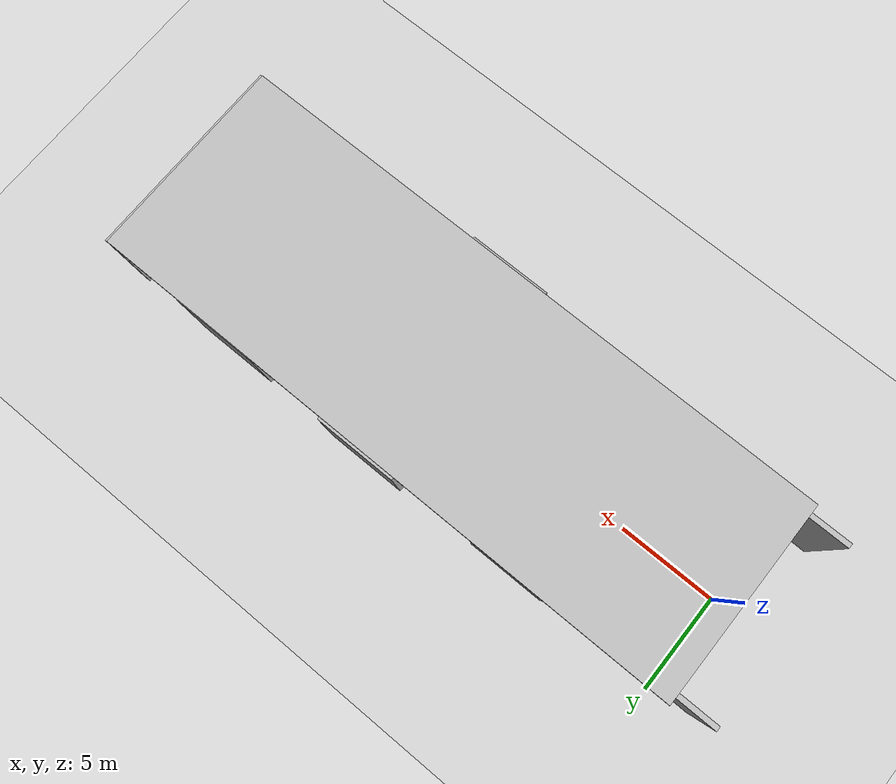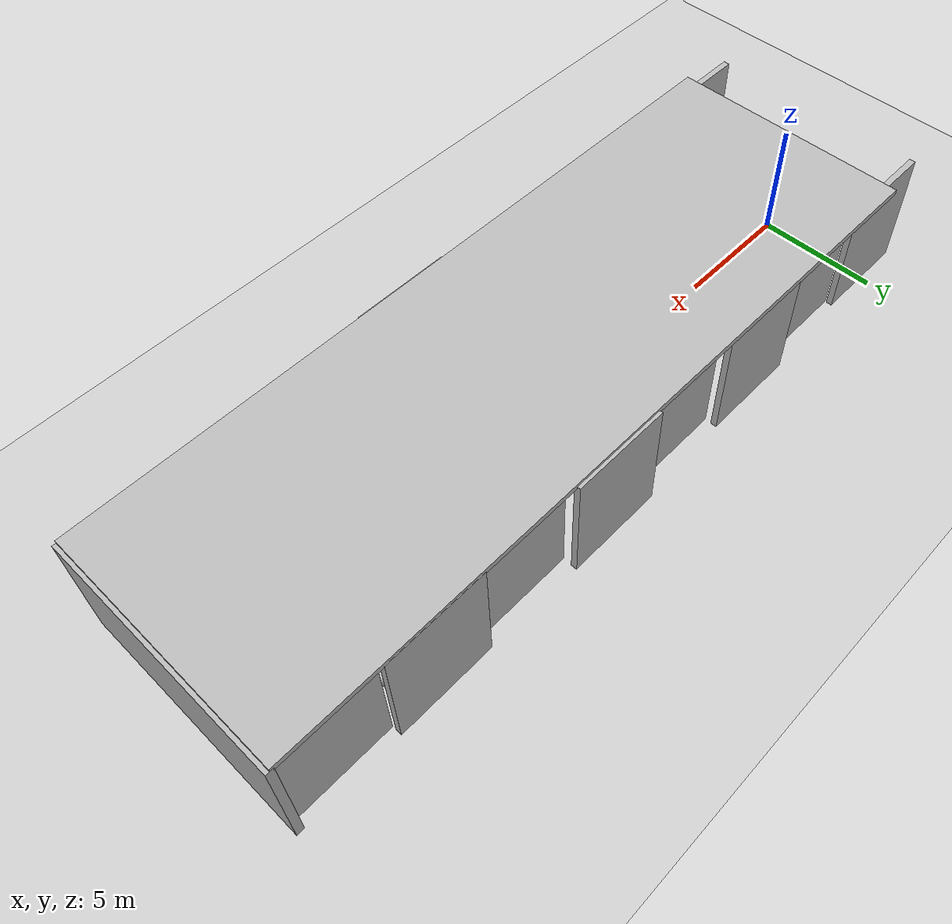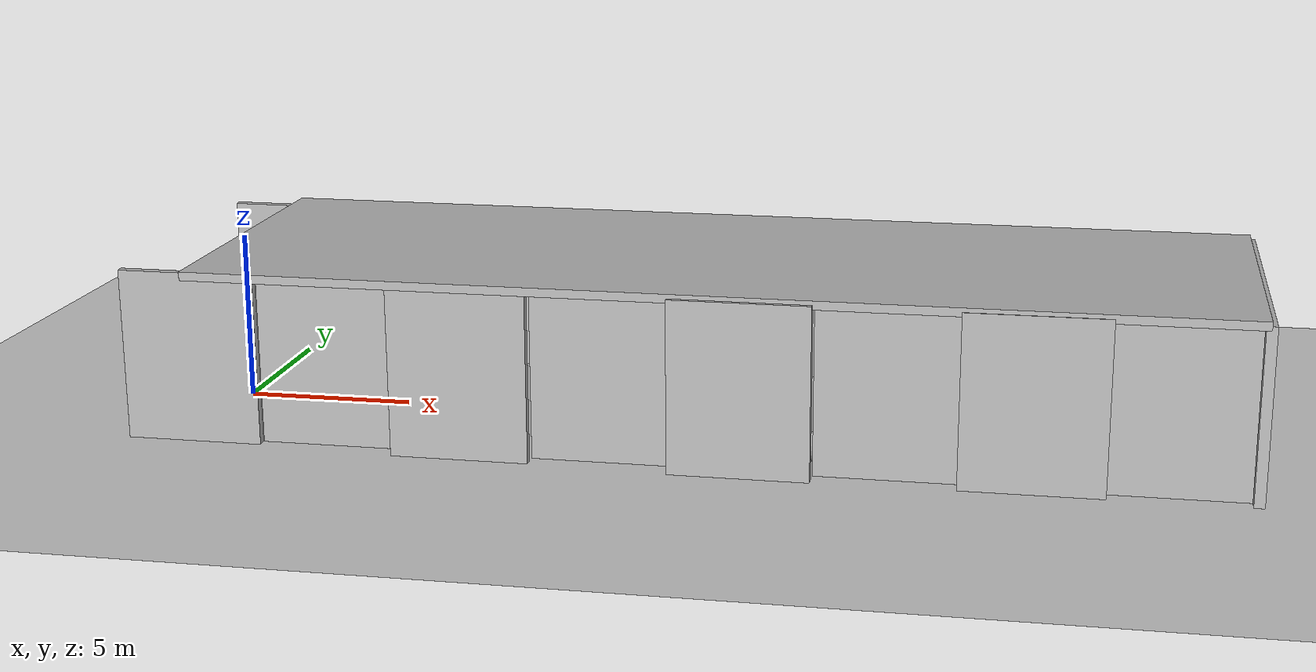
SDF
<?xml version="1.0" ?>
<sdf version="1.6">
  <world name="goaf_complex">
    <include><uri>model://sun</uri></include>
    <include><uri>model://ground_plane</uri></include>

    <model name="left_wall_00"><static>true</static><pose>0.0 4.5 2.5 0 0 0</pose><link name="link"><collision name="collision"><geometry><box><size>4.0 0.25 5.0</size></box></geometry></collision><visual name="visual"><geometry><box><size>4.0 0.25 5.0</size></box></geometry></visual></link></model>
    <model name="left_wall_01"><static>true</static><pose>4.0 4.2 2.5 0 0 0</pose><link name="link"><collision name="collision"><geometry><box><size>4.0 0.25 5.0</size></box></geometry></collision><visual name="visual"><geometry><box><size>4.0 0.25 5.0</size></box></geometry></visual></link></model>
    <model name="left_wall_02"><static>true</static><pose>8.0 4.8 2.5 0 0 0</pose><link name="link"><collision name="collision"><geometry><box><size>4.0 0.25 5.0</size></box></geometry></collision><visual name="visual"><geometry><box><size>4.0 0.25 5.0</size></box></geometry></visual></link></model>
    <model name="left_wall_03"><static>true</static><pose>12.0 4.3 2.5 0 0 0</pose><link name="link"><collision name="collision"><geometry><box><size>4.0 0.25 5.0</size></box></geometry></collision><visual name="visual"><geometry><box><size>4.0 0.25 5.0</size></box></geometry></visual></link></model>
    <model name="left_wall_04"><static>true</static><pose>16.0 5.0 2.5 0 0 0</pose><link name="link"><collision name="collision"><geometry><box><size>4.0 0.25 5.0</size></box></geometry></collision><visual name="visual"><geometry><box><size>4.0 0.25 5.0</size></box></geometry></visual></link></model>
    <model name="left_wall_05"><static>true</static><pose>20.0 4.4 2.5 0 0 0</pose><link name="link"><collision name="collision"><geometry><box><size>4.0 0.25 5.0</size></box></geometry></collision><visual name="visual"><geometry><box><size>4.0 0.25 5.0</size></box></geometry></visual></link></model>
    <model name="left_wall_06"><static>true</static><pose>24.0 4.9 2.5 0 0 0</pose><link name="link"><collision name="collision"><geometry><box><size>4.0 0.25 5.0</size></box></geometry></collision><visual name="visual"><geometry><box><size>4.0 0.25 5.0</size></box></geometry></visual></link></model>
    <model name="left_wall_07"><static>true</static><pose>28.0 4.5 2.5 0 0 0</pose><link name="link"><collision name="collision"><geometry><box><size>4.0 0.25 5.0</size></box></geometry></collision><visual name="visual"><geometry><box><size>4.0 0.25 5.0</size></box></geometry></visual></link></model>

    <model name="right_wall_00"><static>true</static><pose>0.0 -4.5 2.5 0 0 0</pose><link name="link"><collision name="collision"><geometry><box><size>4.0 0.25 5.0</size></box></geometry></collision><visual name="visual"><geometry><box><size>4.0 0.25 5.0</size></box></geometry></visual></link></model>
    <model name="right_wall_01"><static>true</static><pose>4.0 -4.2 2.5 0 0 0</pose><link name="link"><collision name="collision"><geometry><box><size>4.0 0.25 5.0</size></box></geometry></collision><visual name="visual"><geometry><box><size>4.0 0.25 5.0</size></box></geometry></visual></link></model>
    <model name="right_wall_02"><static>true</static><pose>8.0 -4.8 2.5 0 0 0</pose><link name="link"><collision name="collision"><geometry><box><size>4.0 0.25 5.0</size></box></geometry></collision><visual name="visual"><geometry><box><size>4.0 0.25 5.0</size></box></geometry></visual></link></model>
    <model name="right_wall_03"><static>true</static><pose>12.0 -4.3 2.5 0 0 0</pose><link name="link"><collision name="collision"><geometry><box><size>4.0 0.25 5.0</size></box></geometry></collision><visual name="visual"><geometry><box><size>4.0 0.25 5.0</size></box></geometry></visual></link></model>
    <model name="right_wall_04"><static>true</static><pose>16.0 -5.0 2.5 0 0 0</pose><link name="link"><collision name="collision"><geometry><box><size>4.0 0.25 5.0</size></box></geometry></collision><visual name="visual"><geometry><box><size>4.0 0.25 5.0</size></box></geometry></visual></link></model>
    <model name="right_wall_05"><static>true</static><pose>20.0 -4.4 2.5 0 0 0</pose><link name="link"><collision name="collision"><geometry><box><size>4.0 0.25 5.0</size></box></geometry></collision><visual name="visual"><geometry><box><size>4.0 0.25 5.0</size></box></geometry></visual></link></model>
    <model name="right_wall_06"><static>true</static><pose>24.0 -4.9 2.5 0 0 0</pose><link name="link"><collision name="collision"><geometry><box><size>4.0 0.25 5.0</size></box></geometry></collision><visual name="visual"><geometry><box><size>4.0 0.25 5.0</size></box></geometry></visual></link></model>
    <model name="right_wall_07"><static>true</static><pose>28.0 -4.5 2.5 0 0 0</pose><link name="link"><collision name="collision"><geometry><box><size>4.0 0.25 5.0</size></box></geometry></collision><visual name="visual"><geometry><box><size>4.0 0.25 5.0</size></box></geometry></visual></link></model>

    <model name="far_wall"><static>true</static><pose>30.0 0 2.5 0 0 0</pose><link name="link"><collision name="collision"><geometry><box><size>0.3 10.0 5.0</size></box></geometry></collision><visual name="visual"><geometry><box><size>0.3 10.0 5.0</size></box></geometry></visual></link></model>
    <model name="ceiling"><static>true</static><pose>15.0 0 5.0 0 0 0</pose><link name="link"><collision name="collision"><geometry><box><size>30.0 10.0 0.25</size></box></geometry></collision><visual name="visual"><geometry><box><size>30.0 10.0 0.25</size></box></geometry></visual></link></model>

    <!-- Support pillars and braces create partial occlusion without closing
         the main flight corridor. -->
    <model name="support_left_00"><static>true</static><pose>5.5 3.3 2.0 0 0 0</pose><link name="link"><collision name="collision"><geometry><cylinder><radius>0.35</radius><length>4.0</length></cylinder></geometry></collision><visual name="visual"><geometry><cylinder><radius>0.35</radius><length>4.0</length></cylinder></geometry></visual></link></model>
    <model name="support_right_00"><static>true</static><pose>5.5 -3.3 2.0 0 0 0</pose><link name="link"><collision name="collision"><geometry><cylinder><radius>0.35</radius><length>4.0</length></cylinder></geometry></collision><visual name="visual"><geometry><cylinder><radius>0.35</radius><length>4.0</length></cylinder></geometry></visual></link></model>
    <model name="support_left_01"><static>true</static><pose>15.0 3.5 2.0 0 0 0</pose><link name="link"><collision name="collision"><geometry><cylinder><radius>0.4</radius><length>4.0</length></cylinder></geometry></collision><visual name="visual"><geometry><cylinder><radius>0.4</radius><length>4.0</length></cylinder></geometry></visual></link></model>
    <model name="support_right_01"><static>true</static><pose>15.0 -3.5 2.0 0 0 0</pose><link name="link"><collision name="collision"><geometry><cylinder><radius>0.4</radius><length>4.0</length></cylinder></geometry></collision><visual name="visual"><geometry><cylinder><radius>0.4</radius><length>4.0</length></cylinder></geometry></visual></link></model>
    <model name="support_left_02"><static>true</static><pose>23.0 3.5 2.0 0 0 0</pose><link name="link"><collision name="collision"><geometry><cylinder><radius>0.3</radius><length>4.0</length></cylinder></geometry></collision><visual name="visual"><geometry><cylinder><radius>0.3</radius><length>4.0</length></cylinder></geometry></visual></link></model>
    <model name="support_right_02"><static>true</static><pose>23.0 -3.5 2.0 0 0 0</pose><link name="link"><collision name="collision"><geometry><cylinder><radius>0.3</radius><length>4.0</length></cylinder></geometry></collision><visual name="visual"><geometry><cylinder><radius>0.3</radius><length>4.0</length></cylinder></geometry></visual></link></model>

    <!-- Irregular rubble on the floor. -->
    <model name="rock_00"><static>true</static><pose>9.0 -3.2 0.55 0.1 0.2 0.3</pose><link name="link"><collision name="collision"><geometry><sphere><radius>0.55</radius></sphere></geometry></collision><visual name="visual"><geometry><sphere><radius>0.55</radius></sphere></geometry></visual></link></model>
    <model name="rock_01"><static>true</static><pose>11.0 3.2 0.35 0 0 0</pose><link name="link"><collision name="collision"><geometry><sphere><radius>0.35</radius></sphere></geometry></collision><visual name="visual"><geometry><sphere><radius>0.35</radius></sphere></geometry></visual></link></model>
    <model name="rock_02"><static>true</static><pose>18.0 -3.3 0.45 0 0 0</pose><link name="link"><collision name="collision"><geometry><sphere><radius>0.45</radius></sphere></geometry></collision><visual name="visual"><geometry><sphere><radius>0.45</radius></sphere></geometry></visual></link></model>
    <model name="rock_03"><static>true</static><pose>25.0 3.3 0.5 0 0 0</pose><link name="link"><collision name="collision"><geometry><sphere><radius>0.5</radius></sphere></geometry></collision><visual name="visual"><geometry><sphere><radius>0.5</radius></sphere></geometry></visual></link></model>

    <!-- Low floor shelves exercise vertical clearance and near-ground returns. -->
    <model name="floor_shelf_00"><static>true</static><pose>13.0 -2.0 0.15 0 0 0.08</pose><link name="link"><collision name="collision"><geometry><box><size>3.0 1.2 0.3</size></box></geometry></collision><visual name="visual"><geometry><box><size>3.0 1.2 0.3</size></box></geometry></visual></link></model>
    <model name="floor_shelf_01"><static>true</static><pose>21.0 3.4 0.2 0 0 -0.08</pose><link name="link"><collision name="collision"><geometry><box><size>2.5 1.4 0.4</size></box></geometry></collision><visual name="visual"><geometry><box><size>2.5 1.4 0.4</size></box></geometry></visual></link></model>
  </world>
</sdf>
